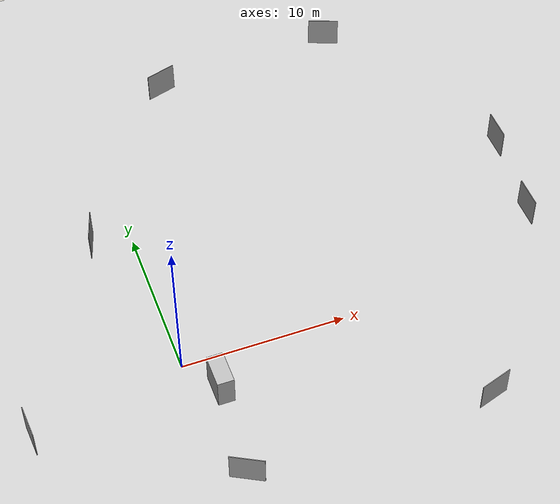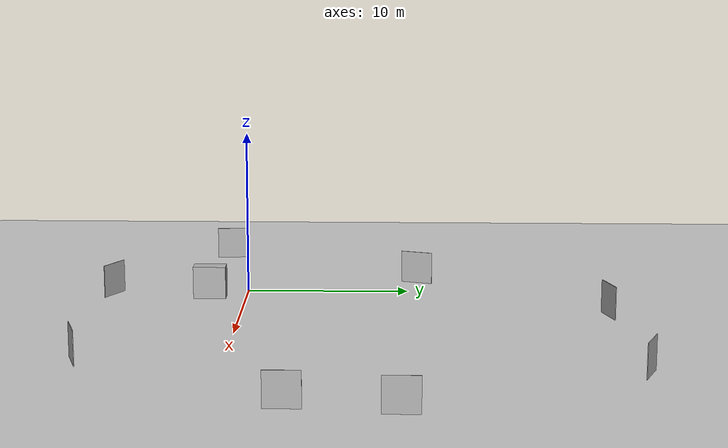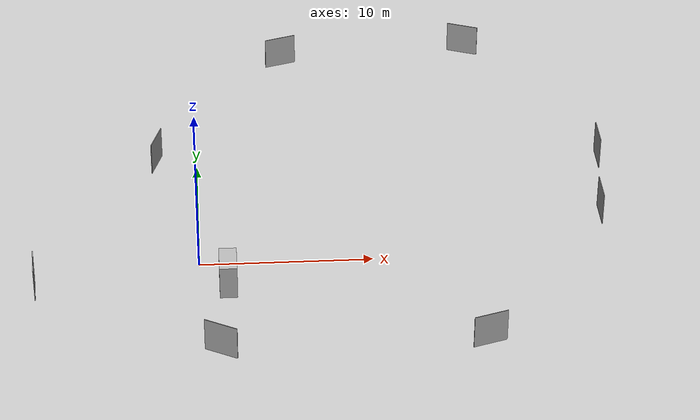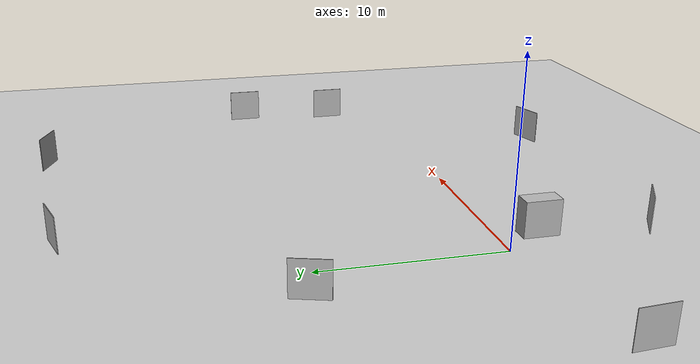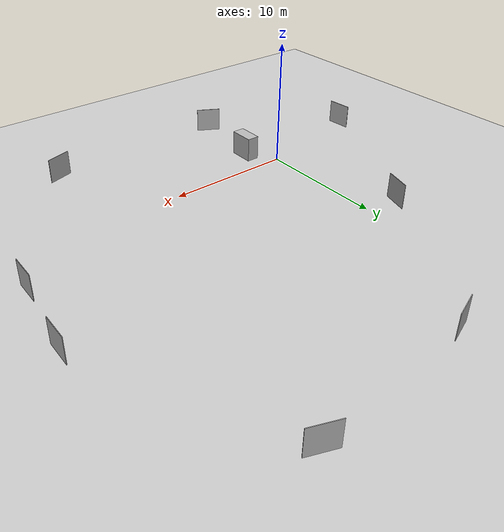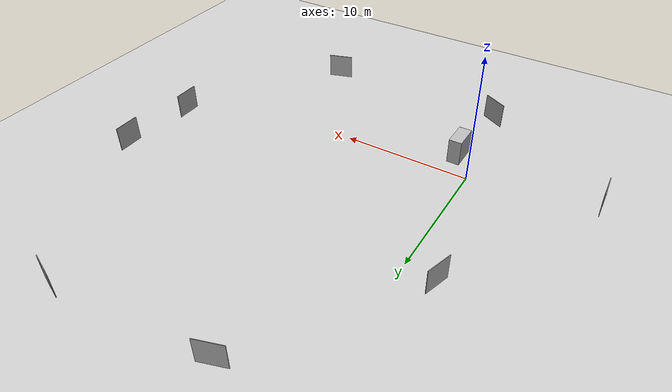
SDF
<sdf version="1.7">
 <world name="default">
  <light name="sun" type="directional">
   <pose>0 0 10 0 -0 0</pose>
   <diffuse>0.8 0.8 0.8 1</diffuse>
   <specular>0.2 0.2 0.2 1</specular>
   <attenuation>
    <range>1000</range>
    <constant>0.9</constant>
    <linear>0.01</linear>
    <quadratic>0.001</quadratic>
   </attenuation>
   <direction>-0.5 0.1 -0.9</direction>
   <spot><inner_angle>0</inner_angle><outer_angle>0</outer_angle><falloff>0</falloff></spot>
  </light>
  <model name="ground_plane">
   <static>1</static>
   <link name="link">
    <collision name="collision">
     <geometry><plane><normal>0 0 1</normal><size>100 100</size></plane></geometry>
     <surface>
      <contact><collide_bitmask>65535</collide_bitmask></contact>
      <friction><ode><mu>100</mu><mu2>50</mu2></ode></friction>
     </surface>
    </collision>
    <visual name="visual">
     <cast_shadows>0</cast_shadows>
     <geometry><plane><normal>0 0 1</normal><size>100 100</size></plane></geometry>
     <material>
      <script><uri>file://media/materials/scripts/gazebo.material</uri><name>Gazebo/Grey</name></script>
     </material>
    </visual>
   </link>
  </model>
  <gravity>0 0 -9.8</gravity>
  <magnetic_field>6e-06 2.3e-05 -4.2e-05</magnetic_field>
  <atmosphere type="adiabatic"/>
  <physics type="ode">
   <max_step_size>0.001</max_step_size>
   <real_time_factor>1</real_time_factor>
   <real_time_update_rate>1000</real_time_update_rate>
  </physics>
  <scene><ambient>0.4 0.4 0.4 1</ambient><background>0.7 0.7 0.7 1</background><shadows>1</shadows></scene>
  <spherical_coordinates>
   <surface_model>EARTH_WGS84</surface_model>
   <latitude_deg>0</latitude_deg>
   <longitude_deg>0</longitude_deg>
   <elevation>0</elevation>
   <heading_deg>0</heading_deg>
  </spherical_coordinates>
  <model name="4x4_1000-5_mov">
   <static>0</static>
   <link name="link">
    <collision name="collision">
     <geometry>
      <mesh><uri>model://4x4_1000-5_moving/meshes/4x4_1000-5.dae</uri><scale>100 4 4</scale></mesh>
     </geometry>
    </collision>
    <visual name="visual">
     <geometry>
      <mesh><uri>model://4x4_1000-5_moving/meshes/4x4_1000-5.dae</uri><scale>100 4 4</scale></mesh>
     </geometry>
    </visual>
    <inertial>
     <inertia><ixx>1</ixx><ixy>0</ixy><ixz>0</ixz><iyy>1</iyy><iyz>0</iyz><izz>1</izz></inertia>
     <mass>1</mass>
    </inertial>
   </link>
   <plugin name="aruco_path_plan" filename="libaruco_path_plan.so"/>
   <pose>1.63218 -2.25093 -0 0 -0 0</pose>
  </model>
  <model name="4x4_1000-5">
   <static>1</static>
   <link name="link">
    <visual name="visual">
     <geometry><mesh><uri>model://4x4_1000-5/meshes/4x4_1000-5.dae</uri><scale>4 4 4</scale></mesh></geometry>
    </visual>
   </link>
   <pose>5.57363 21.9476 0 0 0 -1.26242</pose>
  </model>
  <model name="4x4_1000-7">
   <static>1</static>
   <link name="link">
    <visual name="visual">
     <geometry><mesh><uri>model://4x4_1000-7/meshes/4x4_1000-7.dae</uri><scale>4 4 4</scale></mesh></geometry>
    </visual>
   </link>
   <pose>17.5262 22.8531 0 0 0 -1.94318</pose>
  </model>
  <model name="4x4_1000-9">
   <static>1</static>
   <link name="link">
    <visual name="visual">
     <geometry><mesh><uri>model://4x4_1000-9/meshes/4x4_1000-9.dae</uri><scale>4 4 4</scale></mesh></geometry>
    </visual>
   </link>
   <pose>24.4251 9.66549 0 0 -0 0</pose>
  </model>
  <model name="4x4_1000-5_0">
   <static>1</static>
   <link name="link">
    <visual name="visual">
     <geometry><mesh><uri>model://4x4_1000-5/meshes/4x4_1000-5.dae</uri><scale>4 4 4</scale></mesh></geometry>
    </visual>
   </link>
   <pose>23.7092 3.71983 0 0 -0 0</pose>
  </model>
  <model name="4x4_1000-5_1">
   <static>1</static>
   <link name="link">
    <visual name="visual">
     <geometry><mesh><uri>model://4x4_1000-5/meshes/4x4_1000-5.dae</uri><scale>4 4 4</scale></mesh></geometry>
    </visual>
   </link>
   <pose>15.8326 -8.24338 0 0 0 -1.26446</pose>
  </model>
  <model name="4x4_1000-8">
   <static>1</static>
   <link name="link">
    <visual name="visual">
     <geometry><mesh><uri>model://4x4_1000-8/meshes/4x4_1000-8.dae</uri><scale>4 4 4</scale></mesh></geometry>
    </visual>
   </link>
   <pose>-9.30084 -1.88461 0 0 -0 0.063123</pose>
  </model>
  <model name="4x4_1000-6">
   <static>1</static>
   <link name="link">
    <visual name="visual">
     <geometry><mesh><uri>model://4x4_1000-6/meshes/4x4_1000-6.dae</uri><scale>4 4 4</scale></mesh></geometry>
    </visual>
   </link>
   <pose>-2.41602 10.583 0 0 0 -0.303253</pose>
  </model>
  <model name="4x4_1000-5_2">
   <static>1</static>
   <link name="link">
    <visual name="visual">
     <geometry><mesh><uri>model://4x4_1000-5/meshes/4x4_1000-5.dae</uri><scale>4 4 4</scale></mesh></geometry>
    </visual>
   </link>
   <pose>1.09986 -8.30075 0 0 -0 1.07031</pose>
  </model>
 </world>
</sdf>
